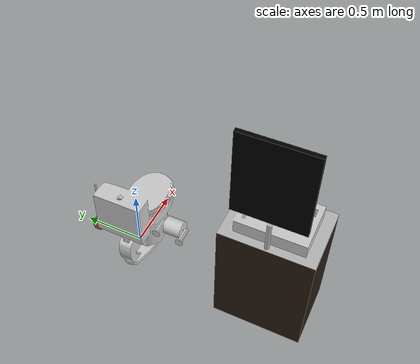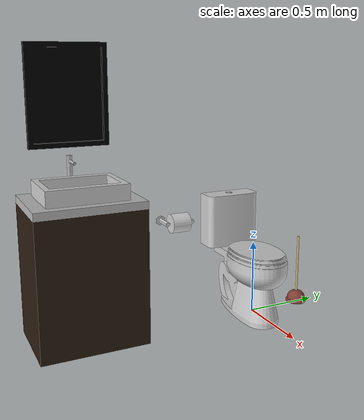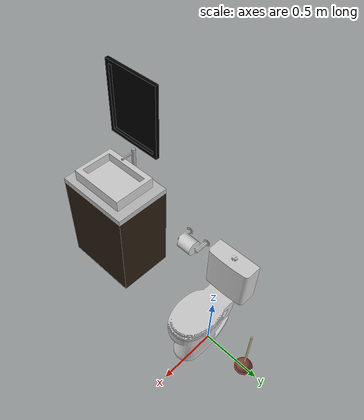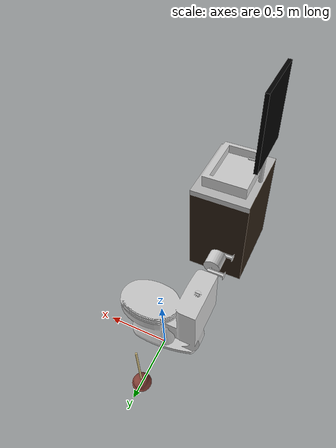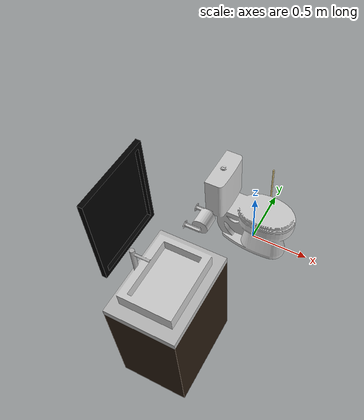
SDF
<?xml version="1.0" ?>
<sdf version="1.5">
  <model name="bathroom_set">
    <link name="link">
      <pose>0 0 0 0 0 0</pose>
      <collision name="collision">
        <geometry>
          <mesh>
            <uri>model://bathroom_set/meshes/model.dae</uri>
          </mesh>
        </geometry>
      </collision>
      <visual name="visual">
        <geometry>
          <mesh>
            <uri>model://bathroom_set/meshes/model.dae</uri>
          </mesh>
        </geometry>
      </visual>
    </link>
  </model>
</sdf>
